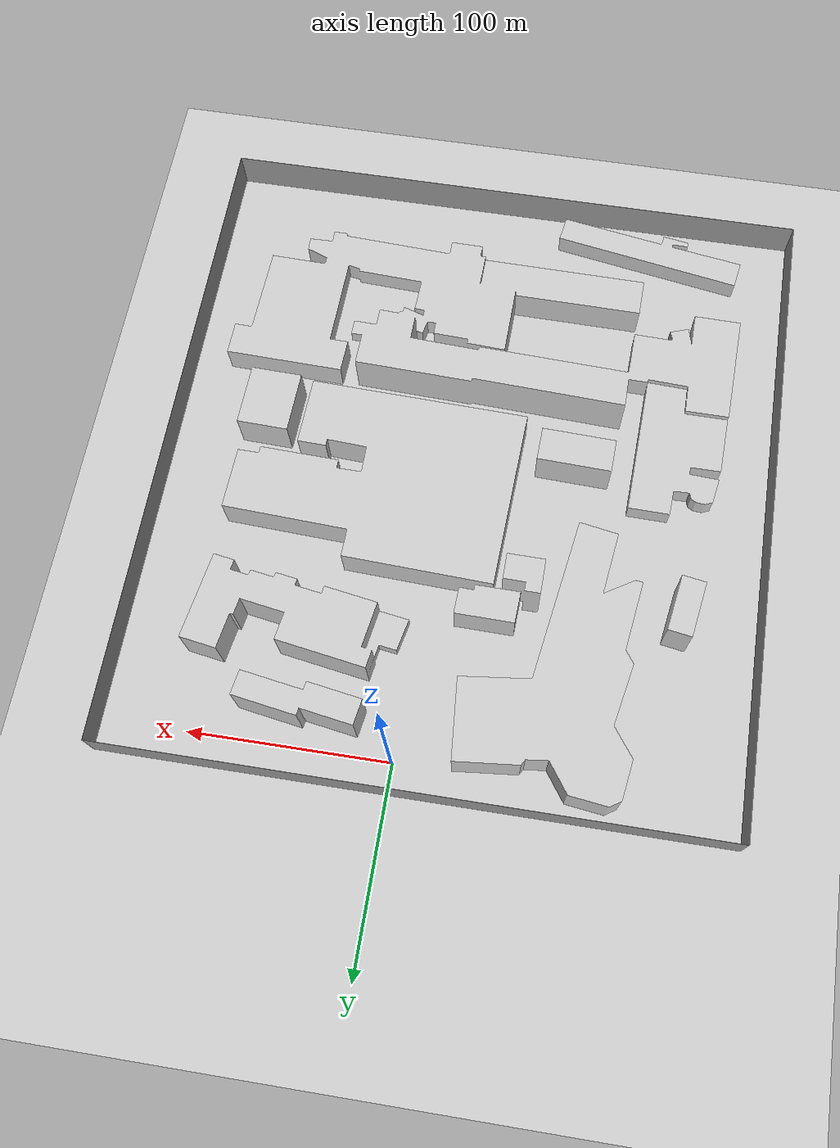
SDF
<sdf version="1.6">
 <world name="default">
  <light name="sun" type="directional">
   <pose>100 150 40 0 -0 0</pose>
   <diffuse>1.0 1.0 1.0 1</diffuse>
   <specular>0.1 0.1 0.1 1</specular>
   <direction>0.1 0.1 -0.9</direction>
   <attenuation>
    <range>20</range>
    <constant>0.5</constant>
    <linear>0.01</linear>
    <quadratic>0.001</quadratic>
   </attenuation>
  </light>
  <gravity>0 0 -9.8</gravity>
  <magnetic_field>6e-06 2.3e-05 -4.2e-05</magnetic_field>
  <atmosphere type="adiabatic"/>
  <scene>
   <ambient>0.6 0.6 0.6 1</ambient>
   <background>0.2 0.2 0.2 1</background>
   <shadows>1</shadows>
   <sky><clouds><speed>0.1</speed></clouds></sky>
   <grid>0</grid>
   <origin_visual>0</origin_visual>
  </scene>
  <light name="glow_1" type="point">
   <pose>-90 -100 50 0 0 0</pose>
   <diffuse>0.5 0.5 0.5 1</diffuse>
   <specular>0.1 0.1 0.1 1</specular>
   <attenuation>
    <range>200</range>
    <constant>0.5</constant>
    <linear>0.01</linear>
    <quadratic>0.001</quadratic>
   </attenuation>
   <direction>0 0 -1</direction>
  </light>
  <light name="glow_2" type="point">
   <pose>-90 70 50 0 0 0</pose>
   <diffuse>0.5 0.5 0.5 1</diffuse>
   <specular>0.1 0.1 0.1 1</specular>
   <attenuation>
    <range>200</range>
    <constant>0.5</constant>
    <linear>0.01</linear>
    <quadratic>0.001</quadratic>
   </attenuation>
   <direction>0 0 -1</direction>
  </light>
  <light name="glow_3" type="point">
   <pose>90 70 50 0 0 0</pose>
   <diffuse>0.5 0.5 0.5 1</diffuse>
   <specular>0.1 0.1 0.1 1</specular>
   <attenuation>
    <range>200</range>
    <constant>0.5</constant>
    <linear>0.01</linear>
    <quadratic>0.001</quadratic>
   </attenuation>
   <direction>0 0 -1</direction>
  </light>
  <light name="glow_4" type="point">
   <pose>90 -100 50 0 0 0</pose>
   <diffuse>0.5 0.5 0.5 1</diffuse>
   <specular>0.1 0.1 0.1 1</specular>
   <attenuation>
    <range>200</range>
    <constant>0.5</constant>
    <linear>0.01</linear>
    <quadratic>0.001</quadratic>
   </attenuation>
   <direction>0 0 -1</direction>
  </light>
  <light name="glow_5" type="point">
   <pose>0 -10 50 0 0 0</pose>
   <diffuse>0.5 0.5 0.5 1</diffuse>
   <specular>0.1 0.1 0.1 1</specular>
   <attenuation>
    <range>200</range>
    <constant>0.5</constant>
    <linear>0.01</linear>
    <quadratic>0.001</quadratic>
   </attenuation>
   <direction>0 0 -1</direction>
  </light>
  <model name="ground_plane">
   <pose>-12 -152 0 0 0 0</pose>
   <static>1</static>
   <link name="link">
    <collision name="collision">
     <geometry><plane><normal>0 0 1</normal><size>320 340</size></plane></geometry>
     <surface><friction><ode><mu>100</mu><mu2>50</mu2></ode></friction></surface>
    </collision>
    <visual name="visual">
     <geometry><plane><normal>0 0 1</normal><size>320 340</size></plane></geometry>
     <material><script><name>Gazebo/Grey</name></script></material>
    </visual>
   </link>
  </model>
  <model name="Campus"><include><uri>model://campus</uri><pose>-18 -140 0 0 0 0</pose></include></model>
  <model name="Bounding_walls">
   <include><uri>model://bounding_walls</uri><pose>-12 -147 0 0 0 0</pose></include>
  </model>
  <plugin name="ActorPosesPlugin" filename="libActorPosesPlugin.so"/>
 </world>
</sdf>

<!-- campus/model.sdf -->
<sdf version='1.6'>
  <model name="Campus">
      <static>1</static>
      <link name="campus">
        <collision name="collision">
          <geometry>
            <mesh>
              <uri>model://campus/meshes/engineering_buildings.dae</uri>
            </mesh>
          </geometry>
        </collision>
        <visual name="visual">
          <cast_shadows>1</cast_shadows>
          <geometry>
            <mesh>
              <uri>model://campus/meshes/engineering_buildings.dae</uri>
            </mesh>
          </geometry>
        </visual>
      </link>
  </model>
</sdf>

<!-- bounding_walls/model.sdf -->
<sdf version='1.6'>
  <model name='bounding_walls'>
    <static>1</static>

    <link name='Wall_1'>
      <collision name='Wall_1_Collision'>
        <geometry>
          <box>
            <size>309 0.1 20</size>
          </box>
        </geometry>
        <pose frame=''>0 0 0 0 0 0</pose>
      </collision>
      <visual name='Wall_1_Visual'>
        <pose frame=''>0 0 0 0 0 0</pose>
        <geometry>
          <box>
            <size>309 0.1 20</size>
          </box>
        </geometry>
        <material>
          <script>
            <uri>model://corridor/materials/scripts</uri>
            <uri>model://corridor/materials/textures</uri>
            <name>Gazebo/Grey</name>
          </script>
          <ambient>1 1 1 1</ambient>
        </material>
        <meta>
          <layer>0</layer>
        </meta>
      </visual>
      <pose frame=''>-0.5 -172 10 0 0 0</pose>
    </link>

    <link name='Wall_2'>
      <collision name='Wall_2_Collision'>
        <geometry>
          <box>
            <size>0.1 334 20</size>
          </box>
        </geometry>
        <pose frame=''>0 0 0 0 0 0</pose>
      </collision>
      <visual name='Wall_2_Visual'>
        <pose frame=''>0 0 0 0 0 0</pose>
        <geometry>
          <box>
            <size>0.1 334 20</size>
          </box>
        </geometry>
        <material>
          <script>
            <name>Gazebo/Grey</name>
          </script>
          <ambient>1 1 1 1</ambient>
        </material>
        <meta>
          <layer>0</layer>
        </meta>
      </visual>
      <pose frame=''>154 -5 10 0 0 0</pose>
    </link>

    <link name='Wall_3'>
      <collision name='Wall_3_Collision'>
        <geometry>
          <box>
            <size>309 0.1 20</size>
          </box>
        </geometry>
        <pose frame=''>0 0 0 0 0 0</pose>
      </collision>
      <visual name='Wall_3_Visual'>
        <pose frame=''>0 0 0 0 0 0</pose>
        <geometry>
          <box>
            <size>309 0.1 20</size>
          </box>
        </geometry>
        <material>
          <script>
            <name>Gazebo/Grey</name>
          </script>
          <ambient>1 1 1 1</ambient>
        </material>
        <meta>
          <layer>0</layer>
        </meta>
      </visual>
      <pose frame=''>-0.5 162 10 0 0 0 0</pose>
    </link>

    <link name='Wall_4'>
      <collision name='Wall_4_Collision'>
        <geometry>
          <box>
            <size>0.1 334 20</size>
          </box>
        </geometry>
        <pose frame=''>0 0 0 0 0 0</pose>
      </collision>
      <visual name='Wall_4_Visual'>
        <pose frame=''>0 0 0 0 0 0</pose>
        <geometry>
          <box>
            <size>0.1 334 20</size>
          </box>
        </geometry>
        <material>
          <script>
            <name>Gazebo/Grey</name>
          </script>
          <ambient>1 1 1 1</ambient>
        </material>
        <meta>
          <layer>0</layer>
        </meta>
      </visual>
      <pose frame=''>-155 -5 10 0 0 0</pose>
    </link>

  </model>
</sdf>
